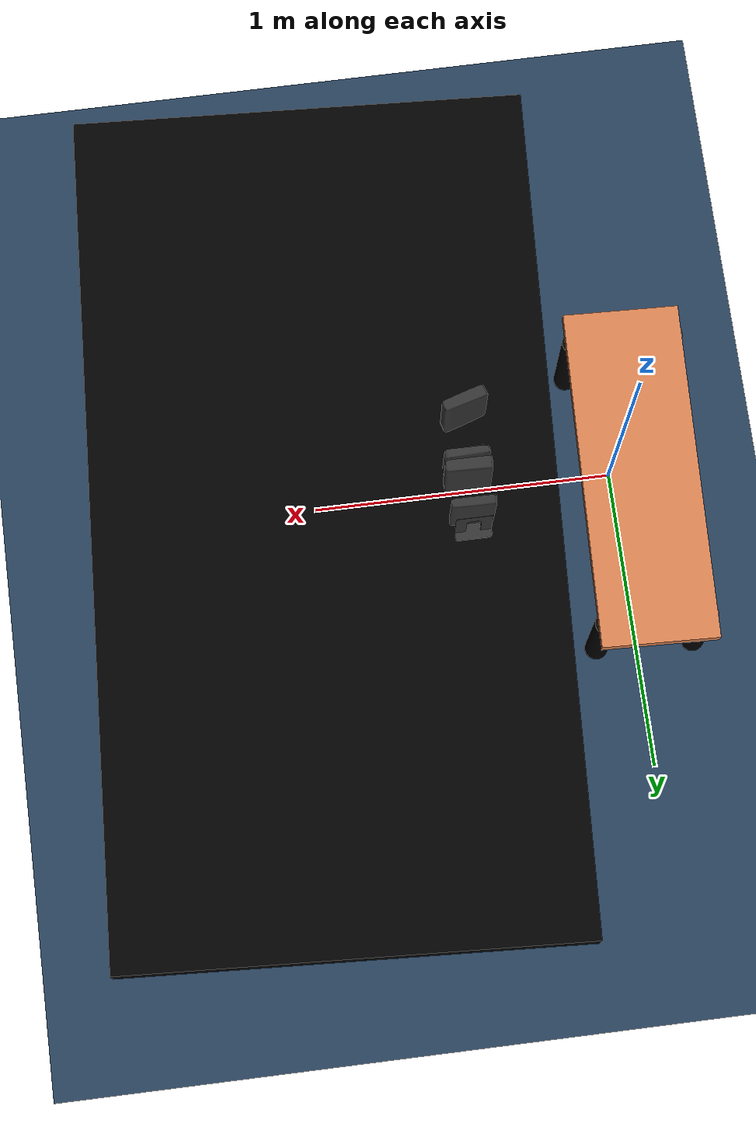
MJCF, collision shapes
<mujoco model="book scene (no robot)">
  <compiler angle="radian" autolimits="true" meshdir="assets"/>
  <include file="book.xml"/>

  <statistic center="0.2 0 0.4" extent=".65"/>

  <visual>
    <headlight diffuse="0.5 0.5 0.5" ambient="0.1 0.1 0.1" specular="0 0 0"/>
    <rgba haze="0.15 0.25 0.35 1"/>
    <global azimuth="150" elevation="-20" offwidth="1280" offheight="960"/>
    <quality shadowsize="0"/>
  </visual>

  <asset>
    <texture type="skybox" builtin="gradient" rgb1="0.3 0.5 0.7" rgb2="0 0 0" width="512" height="3072"/>
    <texture type="2d" name="groundplane" builtin="checker" mark="edge" rgb1="0.2 0.3 0.4" rgb2="0.1 0.2 0.3"
      markrgb="0.8 0.8 0.8" width="300" height="300"/>
    <material name="groundplane" texture="groundplane" texuniform="true" texrepeat="5 5" reflectance="0.2"/>
    <material name="shelf_mat" rgba="0.55 0.48 0.40 1" specular="0.1" shininess="0.1"/>
  </asset>

  <worldbody>
    <!-- All positions are in MuJoCo world frame: origin at (0,0,0), Z up. -->
    <light pos="0 0 1.5" dir="0 0 -1" directional="true" castshadow="false"
           diffuse="0.5 0.5 0.5" specular="0 0 0"/>
    <geom name="floor" type="plane" size="3 3 0.02" pos="0 0 -0.5" material="groundplane"/>

    <!-- Small table under the (absent) robot base: flat top + 4 black legs near the corners. -->
    <body name="robot_table" pos="-0.1100 0.0050 0.0000" euler="0.0000 0.0000 -0.0349">
      <geom name="robot_table_top" type="box" size="0.2 0.59 0.02" pos="0 0 -0.02" rgba="0.847 0.506 0.318 1"/>
      <geom name="robot_table_leg_1" type="cylinder" size="0.04 0.2" pos="0.17 0.50 -0.24" rgba="0 0 0 1"/>
      <geom name="robot_table_leg_2" type="cylinder" size="0.04 0.2" pos="-0.17 0.5 -0.24" rgba="0 0 0 1"/>
      <geom name="robot_table_leg_3" type="cylinder" size="0.04 0.2" pos="0.17 -0.50 -0.24" rgba="0 0 0 1"/>
      <geom name="robot_table_leg_4" type="cylinder" size="0.04 0.2" pos="-0.17 -0.5 -0.24" rgba="0 0 0 1"/>
      <geom name="robot_table_ledger" type="cylinder" size="0.02" fromto="0.17 0.50 -0.08 0.17 -0.50 -0.08" rgba="0 0 0 1"/>
    </body>

    <body name="table" pos="0.9700 0.0000 -0.0950" euler="0.0000 0.0000 -0.0524">
      <geom name="table" type="box" size="0.8 1.5 0.05"
            rgba="0 0 0 1"
            friction="2 0.05 0.01"
            solref="0.004 1"
            solimp="0.95 0.99 0.001"/>
    </body>

    <!-- Keep local Z upright so the book stands on the table. -->
    <body name="book" pos="0.4635 -0.2713 0.0887" quat="0.5878 0.0000 0.0000 0.8090">
      <freejoint name="book_joint"/>
      <include file="book_collision.xml"/>
    </body>

    <!-- Fixed book-shelving target: two books on the left bookend, one book on the right. -->
    <body name="book_shelf_target" pos="0.4800 0.0050 -0.0450" euler="0.0000 0.0000 1.5708">
      <geom name="left_bookend_visual" type="mesh" mesh="bookend" material="bookend_visual_mat"
            pos="-0.0110 0.0630 0.1710" euler="3.14159265 0 1.57079633"
            contype="0" conaffinity="0" mass="0"/>
      <geom name="left_bookend_col" type="mesh" mesh="bookend" class="book_target_collision"
            pos="-0.0110 0.0630 0.1710" euler="3.14159265 0 1.57079633"/>

      <geom name="i_book_target_visual" type="mesh" mesh="i_book_visual" material="i_book_visual_mat"
            pos="-0.0950 0.0000 0.1261" contype="0" conaffinity="0" mass="0"/>
      <geom name="i_book_target_col" type="mesh" mesh="i_book_collision" class="book_target_collision"
            pos="-0.0950 0.0000 0.1261"/>

      <geom name="l_book_target_visual" type="mesh" mesh="l_book_visual" material="l_book_visual_mat"
            pos="-0.0450 0.0000 0.1346" contype="0" conaffinity="0" mass="0"/>
      <geom name="l_book_target_col" type="mesh" mesh="l_book_collision" class="book_target_collision"
            pos="-0.0450 0.0000 0.1346"/>

      <geom name="d_book_target_visual" type="mesh" mesh="d_book_visual" material="d_book_visual_mat"
            pos="0.0780 0.0000 0.1231" contype="0" conaffinity="0" mass="0"/>
      <geom name="d_book_target_col" type="mesh" mesh="d_book_collision" class="book_target_collision"
            pos="0.0780 0.0000 0.1231"/>

      <geom name="right_bookend_visual" type="mesh" mesh="bookend" material="bookend_visual_mat"
            pos="-0.0040 -0.0630 0.1710" euler="3.14159265 0 -1.57079633"
            contype="0" conaffinity="0" mass="0"/>
      <geom name="right_bookend_col" type="mesh" mesh="bookend" class="book_target_collision"
            pos="-0.0040 -0.0630 0.1710" euler="3.14159265 0 -1.57079633"/>
    </body>

    <!-- Stationary camera: same pose as the full scene's stationary_cam. -->
    <camera name="stationary_cam" pos="0.5 0.0 0.8" xyaxes="0 -1 0 0.5 0 1"
            fovy="62.74"/>
    <!-- Wide free camera showing the whole tabletop layout. -->
    <camera name="overview_cam" pos="1.6 1.6 1.3" xyaxes="-0.7071 0.7071 0 -0.35 -0.35 0.87"/>
  </worldbody>

</mujoco>

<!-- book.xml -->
<mujoco>
  <default>
    <default class="book_collision">
      <geom material="book_collision_mat" mass="0.35"
            friction="4.0 0.5 0.05" condim="6" priority="1"
            solref="0.002 1" solimp="0.99 0.9999 0.001" group="3"/>
    </default>
    <default class="book_target_collision">
      <geom material="book_collision_mat" mass="0"
            friction="2 0.05 0.01" condim="4" priority="1"
            solref="0.004 1" solimp="0.95 0.99 0.001" group="3"/>
    </default>
  </default>

  <asset>
    <texture type="2d" name="book_texture" file="assets/book/material_0.png"/>
    <material name="book_visual_mat" texture="book_texture" specular="0.1" shininess="0.1"/>
    <texture type="2d" name="i_book_texture" file="assets/i_book/material_0.png"/>
    <material name="i_book_visual_mat" texture="i_book_texture" specular="0.1" shininess="0.1"/>
    <texture type="2d" name="l_book_texture" file="assets/l_book/material_0.png"/>
    <material name="l_book_visual_mat" texture="l_book_texture" specular="0.1" shininess="0.1"/>
    <texture type="2d" name="d_book_texture" file="assets/d_book/material_0.png"/>
    <material name="d_book_visual_mat" texture="d_book_texture" specular="0.1" shininess="0.1"/>
    <material name="bookend_visual_mat" rgba="0.05 0.32 0.85 1" specular="0.2" shininess="0.2"/>
    <material name="book_collision_mat" rgba="0.2 0.2 0.2 1"/>
    <mesh name="book_visual" file="book/textured_mesh_center_aligned.obj" scale="0.9 0.9 0.9"/>
    <mesh name="book_collision" file="book/textured_mesh_center_aligned_convex.obj" scale="0.9 0.9 0.9"/>
    <mesh name="i_book_visual" file="i_book/textured_mesh_center_aligned.obj" scale="0.9 0.9 0.9"/>
    <mesh name="i_book_collision" file="i_book/textured_mesh_center_aligned_convex.obj" scale="0.9 0.9 0.9"/>
    <mesh name="l_book_visual" file="l_book/textured_mesh_center_aligned.obj" scale="0.9 0.9 0.9"/>
    <mesh name="l_book_collision" file="l_book/textured_mesh_center_aligned_convex.obj" scale="0.9 0.9 0.9"/>
    <mesh name="d_book_visual" file="d_book/textured_mesh_center_aligned.obj" scale="0.9 0.9 0.9"/>
    <mesh name="d_book_collision" file="d_book/textured_mesh_center_aligned_convex.obj" scale="0.9 0.9 0.9"/>
    <mesh name="bookend" file="bookend.STL" scale="0.001 0.001 0.001"/>
  </asset>
</mujoco>

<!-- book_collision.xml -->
<mujoco>
  <geom name="book_visual" type="mesh" mesh="book_visual" material="book_visual_mat"
        contype="0" conaffinity="0" mass="0"/>
  <geom name="book_col" type="mesh" mesh="book_collision" class="book_collision"/>
</mujoco>
